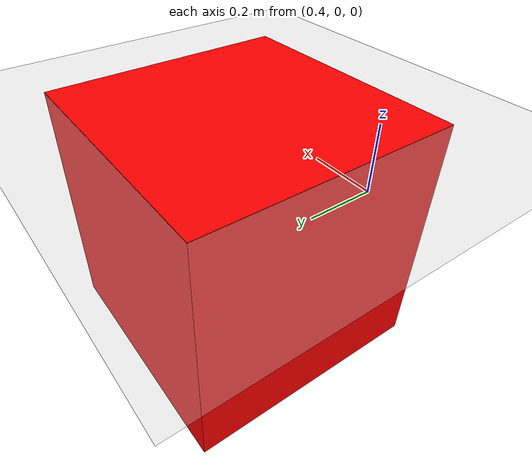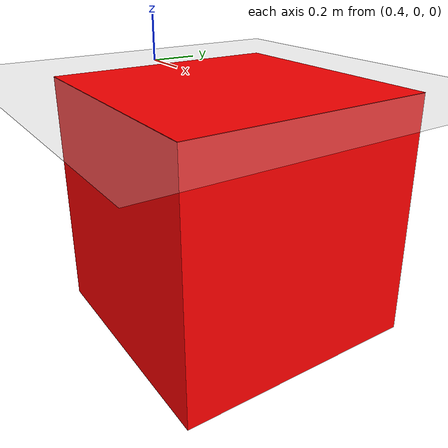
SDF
<?xml version="1.0" ?>
<sdf version="1.4">
  <world name="default">
    <include>
      <uri>model://ground_plane</uri>
    </include>
    <include>
      <uri>model://sun</uri>
    </include>
    <model name="box">
      <pose>0 0 0 0 0 0</pose>
      <link name="top">
        <collision name="collision">
          <pose>1 0 -0.5 0 0 0</pose>
          <geometry>
            <box>
              <size>1 1 1</size>
            </box>
          </geometry>
        </collision>
        <visual name="visual">
        <pose>1 0 -0.5 0 0 0</pose>
          <geometry>
            <box>
              <size>1 1 1</size>
            </box>
          </geometry>
          <material>
            <ambient>1 0 0 1</ambient>
            <diffuse>1 0 0 1</diffuse>
          </material>
        </visual>
        <collision name="collision_full">
          <pose>1 0 -0.5 0 0 0</pose>
          <geometry>
            <box>
              <size>1 1 1</size>
            </box>
          </geometry>
          <surface>
            <friction>
              <ode>
                <mu>0.5</mu>
                <mu2>0.5</mu2>
              </ode>
            </friction>
          </surface>
        </collision>
        <inertial>
          <mass>0.01</mass>
          <pose>1 0 -0.5 0 0 0</pose>
          <inertia>
            <ixx>0.167</ixx>
            <iyy>0.167</iyy>
            <izz>0.167</izz>
          </inertia>
        </inertial>
      </link>
    </model>
  </world>
</sdf>
